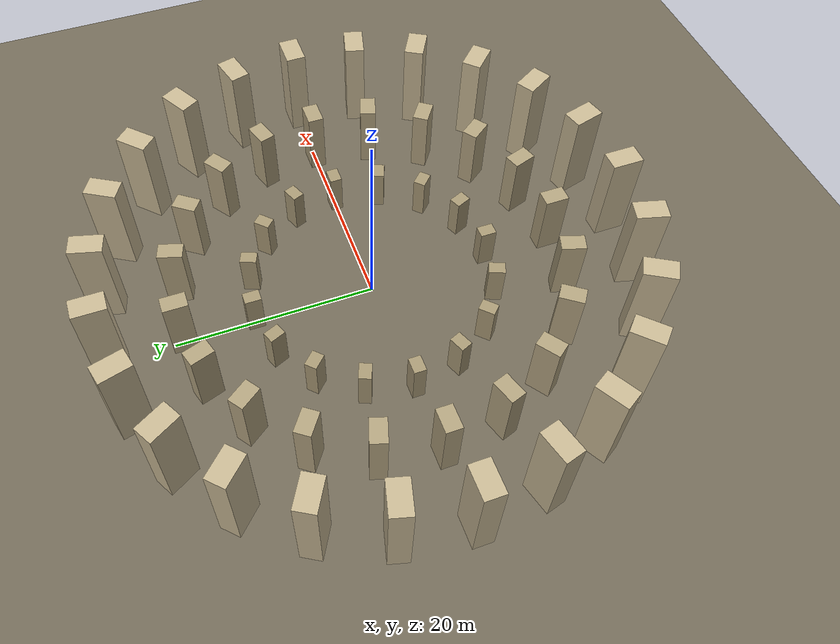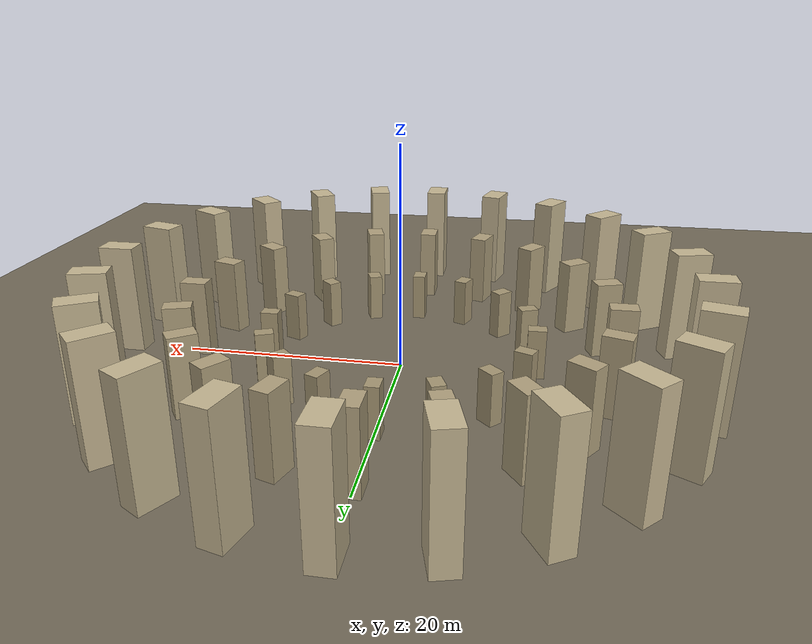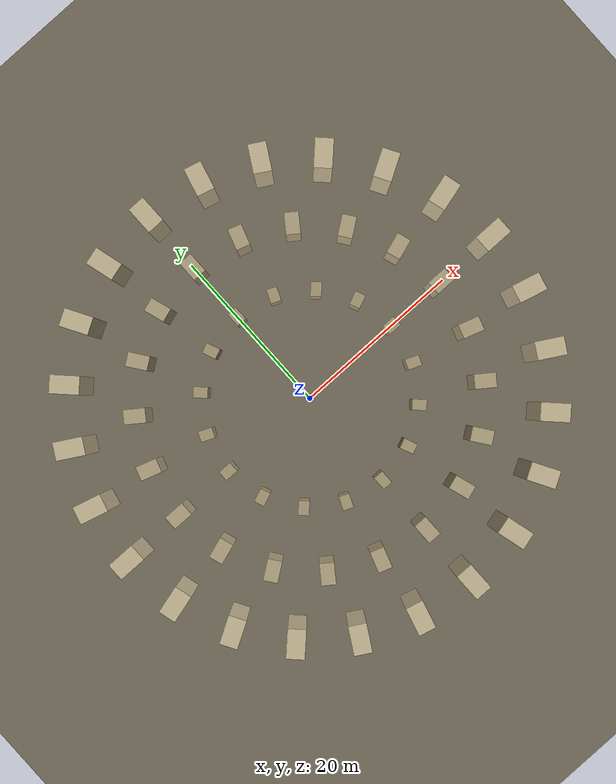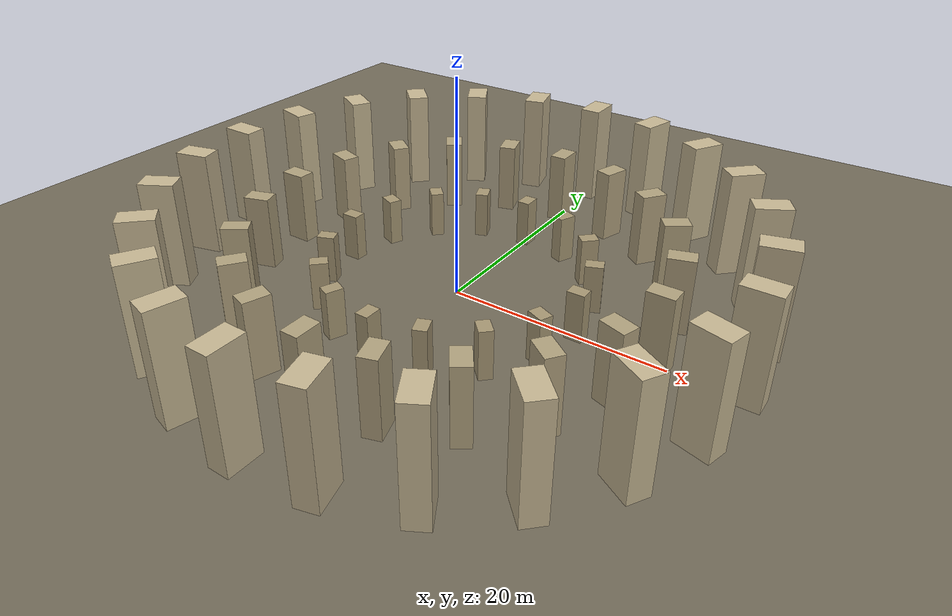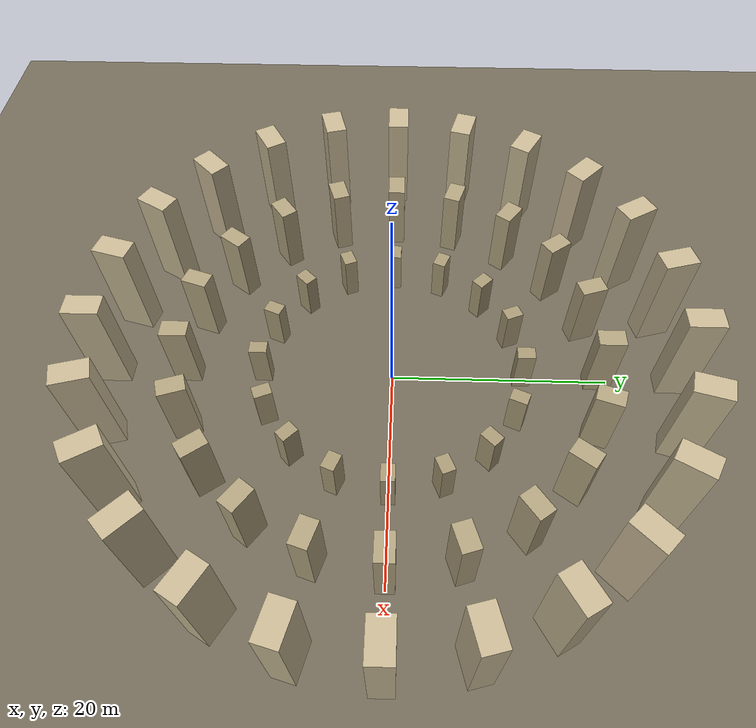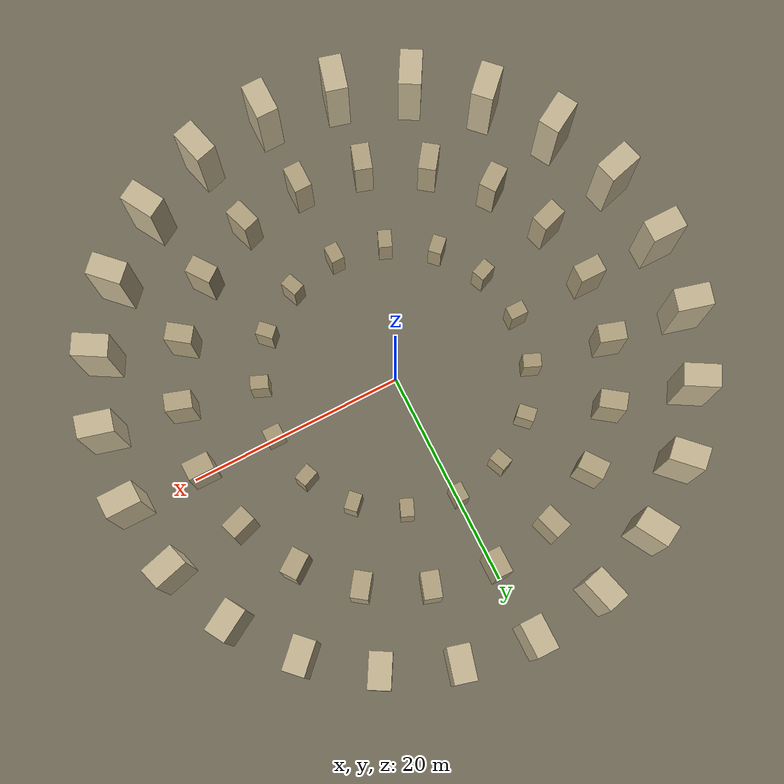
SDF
<sdf version="1.9">
 <world name="uav_colosseum">
  <physics type="ode"><max_step_size>0.004</max_step_size><real_time_factor>1.0</real_time_factor></physics>
  <plugin filename="gz-sim-physics-system" name="gz::sim::systems::Physics"/>
  <plugin filename="gz-sim-user-commands-system" name="gz::sim::systems::UserCommands"/>
  <plugin filename="gz-sim-scene-broadcaster-system" name="gz::sim::systems::SceneBroadcaster"/>
  <plugin filename="gz-sim-sensors-system" name="gz::sim::systems::Sensors">
   <render_engine>ogre2</render_engine>
  </plugin>
  <scene><ambient>0.6 0.6 0.6 1</ambient><background>0.7 0.8 0.95 1</background></scene>
  <light type="directional" name="sun">
   <pose>0 0 100 0 0 0</pose>
   <diffuse>1 1 1 1</diffuse>
   <specular>0.3 0.3 0.3 1</specular>
   <direction>-0.3 0.2 -0.9</direction>
  </light>
  <model name="ground_plane">
   <static>true</static>
   <link name="link">
    <collision name="c"><geometry><plane><normal>0 0 1</normal><size>500 500</size></plane></geometry></collision>
    <visual name="v">
     <geometry><plane><normal>0 0 1</normal><size>500 500</size></plane></geometry>
     <material><diffuse>0.45 0.42 0.35 1</diffuse></material>
    </visual>
   </link>
  </model>
  <model name="outer_0">
   <static>true</static>
   <pose>26.00 0.00 5.00 0 0 0.000</pose>
   <link name="l">
    <collision name="c"><geometry><box><size>3.2 2.0 10</size></box></geometry></collision>
    <visual name="v">
     <geometry><box><size>3.2 2.0 10</size></box></geometry>
     <material><diffuse>0.78 0.72 0.58 1</diffuse><specular>0.2 0.2 0.2 1</specular></material>
    </visual>
   </link>
  </model>
  <model name="outer_1">
   <static>true</static>
   <pose>25.11 6.73 5.00 0 0 0.262</pose>
   <link name="l">
    <collision name="c"><geometry><box><size>3.2 2.0 10</size></box></geometry></collision>
    <visual name="v">
     <geometry><box><size>3.2 2.0 10</size></box></geometry>
     <material><diffuse>0.78 0.72 0.58 1</diffuse><specular>0.2 0.2 0.2 1</specular></material>
    </visual>
   </link>
  </model>
  <model name="outer_2">
   <static>true</static>
   <pose>22.52 13.00 5.00 0 0 0.524</pose>
   <link name="l">
    <collision name="c"><geometry><box><size>3.2 2.0 10</size></box></geometry></collision>
    <visual name="v">
     <geometry><box><size>3.2 2.0 10</size></box></geometry>
     <material><diffuse>0.78 0.72 0.58 1</diffuse><specular>0.2 0.2 0.2 1</specular></material>
    </visual>
   </link>
  </model>
  <model name="outer_3">
   <static>true</static>
   <pose>18.38 18.38 5.00 0 0 0.785</pose>
   <link name="l">
    <collision name="c"><geometry><box><size>3.2 2.0 10</size></box></geometry></collision>
    <visual name="v">
     <geometry><box><size>3.2 2.0 10</size></box></geometry>
     <material><diffuse>0.78 0.72 0.58 1</diffuse><specular>0.2 0.2 0.2 1</specular></material>
    </visual>
   </link>
  </model>
  <model name="outer_4">
   <static>true</static>
   <pose>13.00 22.52 5.00 0 0 1.047</pose>
   <link name="l">
    <collision name="c"><geometry><box><size>3.2 2.0 10</size></box></geometry></collision>
    <visual name="v">
     <geometry><box><size>3.2 2.0 10</size></box></geometry>
     <material><diffuse>0.78 0.72 0.58 1</diffuse><specular>0.2 0.2 0.2 1</specular></material>
    </visual>
   </link>
  </model>
  <model name="outer_5">
   <static>true</static>
   <pose>6.73 25.11 5.00 0 0 1.309</pose>
   <link name="l">
    <collision name="c"><geometry><box><size>3.2 2.0 10</size></box></geometry></collision>
    <visual name="v">
     <geometry><box><size>3.2 2.0 10</size></box></geometry>
     <material><diffuse>0.78 0.72 0.58 1</diffuse><specular>0.2 0.2 0.2 1</specular></material>
    </visual>
   </link>
  </model>
  <model name="outer_6">
   <static>true</static>
   <pose>0.00 26.00 5.00 0 0 1.571</pose>
   <link name="l">
    <collision name="c"><geometry><box><size>3.2 2.0 10</size></box></geometry></collision>
    <visual name="v">
     <geometry><box><size>3.2 2.0 10</size></box></geometry>
     <material><diffuse>0.78 0.72 0.58 1</diffuse><specular>0.2 0.2 0.2 1</specular></material>
    </visual>
   </link>
  </model>
  <model name="outer_7">
   <static>true</static>
   <pose>-6.73 25.11 5.00 0 0 1.833</pose>
   <link name="l">
    <collision name="c"><geometry><box><size>3.2 2.0 10</size></box></geometry></collision>
    <visual name="v">
     <geometry><box><size>3.2 2.0 10</size></box></geometry>
     <material><diffuse>0.78 0.72 0.58 1</diffuse><specular>0.2 0.2 0.2 1</specular></material>
    </visual>
   </link>
  </model>
  <model name="outer_8">
   <static>true</static>
   <pose>-13.00 22.52 5.00 0 0 2.094</pose>
   <link name="l">
    <collision name="c"><geometry><box><size>3.2 2.0 10</size></box></geometry></collision>
    <visual name="v">
     <geometry><box><size>3.2 2.0 10</size></box></geometry>
     <material><diffuse>0.78 0.72 0.58 1</diffuse><specular>0.2 0.2 0.2 1</specular></material>
    </visual>
   </link>
  </model>
  <model name="outer_9">
   <static>true</static>
   <pose>-18.38 18.38 5.00 0 0 2.356</pose>
   <link name="l">
    <collision name="c"><geometry><box><size>3.2 2.0 10</size></box></geometry></collision>
    <visual name="v">
     <geometry><box><size>3.2 2.0 10</size></box></geometry>
     <material><diffuse>0.78 0.72 0.58 1</diffuse><specular>0.2 0.2 0.2 1</specular></material>
    </visual>
   </link>
  </model>
  <model name="outer_10">
   <static>true</static>
   <pose>-22.52 13.00 5.00 0 0 2.618</pose>
   <link name="l">
    <collision name="c"><geometry><box><size>3.2 2.0 10</size></box></geometry></collision>
    <visual name="v">
     <geometry><box><size>3.2 2.0 10</size></box></geometry>
     <material><diffuse>0.78 0.72 0.58 1</diffuse><specular>0.2 0.2 0.2 1</specular></material>
    </visual>
   </link>
  </model>
  <model name="outer_11">
   <static>true</static>
   <pose>-25.11 6.73 5.00 0 0 2.880</pose>
   <link name="l">
    <collision name="c"><geometry><box><size>3.2 2.0 10</size></box></geometry></collision>
    <visual name="v">
     <geometry><box><size>3.2 2.0 10</size></box></geometry>
     <material><diffuse>0.78 0.72 0.58 1</diffuse><specular>0.2 0.2 0.2 1</specular></material>
    </visual>
   </link>
  </model>
  <model name="outer_12">
   <static>true</static>
   <pose>-26.00 0.00 5.00 0 0 3.142</pose>
   <link name="l">
    <collision name="c"><geometry><box><size>3.2 2.0 10</size></box></geometry></collision>
    <visual name="v">
     <geometry><box><size>3.2 2.0 10</size></box></geometry>
     <material><diffuse>0.78 0.72 0.58 1</diffuse><specular>0.2 0.2 0.2 1</specular></material>
    </visual>
   </link>
  </model>
  <model name="outer_13">
   <static>true</static>
   <pose>-25.11 -6.73 5.00 0 0 3.403</pose>
   <link name="l">
    <collision name="c"><geometry><box><size>3.2 2.0 10</size></box></geometry></collision>
    <visual name="v">
     <geometry><box><size>3.2 2.0 10</size></box></geometry>
     <material><diffuse>0.78 0.72 0.58 1</diffuse><specular>0.2 0.2 0.2 1</specular></material>
    </visual>
   </link>
  </model>
  <model name="outer_14">
   <static>true</static>
   <pose>-22.52 -13.00 5.00 0 0 3.665</pose>
   <link name="l">
    <collision name="c"><geometry><box><size>3.2 2.0 10</size></box></geometry></collision>
    <visual name="v">
     <geometry><box><size>3.2 2.0 10</size></box></geometry>
     <material><diffuse>0.78 0.72 0.58 1</diffuse><specular>0.2 0.2 0.2 1</specular></material>
    </visual>
   </link>
  </model>
  <model name="outer_15">
   <static>true</static>
   <pose>-18.38 -18.38 5.00 0 0 3.927</pose>
   <link name="l">
    <collision name="c"><geometry><box><size>3.2 2.0 10</size></box></geometry></collision>
    <visual name="v">
     <geometry><box><size>3.2 2.0 10</size></box></geometry>
     <material><diffuse>0.78 0.72 0.58 1</diffuse><specular>0.2 0.2 0.2 1</specular></material>
    </visual>
   </link>
  </model>
  <model name="outer_16">
   <static>true</static>
   <pose>-13.00 -22.52 5.00 0 0 4.189</pose>
   <link name="l">
    <collision name="c"><geometry><box><size>3.2 2.0 10</size></box></geometry></collision>
    <visual name="v">
     <geometry><box><size>3.2 2.0 10</size></box></geometry>
     <material><diffuse>0.78 0.72 0.58 1</diffuse><specular>0.2 0.2 0.2 1</specular></material>
    </visual>
   </link>
  </model>
  <model name="outer_17">
   <static>true</static>
   <pose>-6.73 -25.11 5.00 0 0 4.451</pose>
   <link name="l">
    <collision name="c"><geometry><box><size>3.2 2.0 10</size></box></geometry></collision>
    <visual name="v">
     <geometry><box><size>3.2 2.0 10</size></box></geometry>
     <material><diffuse>0.78 0.72 0.58 1</diffuse><specular>0.2 0.2 0.2 1</specular></material>
    </visual>
   </link>
  </model>
  <model name="outer_18">
   <static>true</static>
   <pose>-0.00 -26.00 5.00 0 0 4.712</pose>
   <link name="l">
    <collision name="c"><geometry><box><size>3.2 2.0 10</size></box></geometry></collision>
    <visual name="v">
     <geometry><box><size>3.2 2.0 10</size></box></geometry>
     <material><diffuse>0.78 0.72 0.58 1</diffuse><specular>0.2 0.2 0.2 1</specular></material>
    </visual>
   </link>
  </model>
  <model name="outer_19">
   <static>true</static>
   <pose>6.73 -25.11 5.00 0 0 4.974</pose>
   <link name="l">
    <collision name="c"><geometry><box><size>3.2 2.0 10</size></box></geometry></collision>
    <visual name="v">
     <geometry><box><size>3.2 2.0 10</size></box></geometry>
     <material><diffuse>0.78 0.72 0.58 1</diffuse><specular>0.2 0.2 0.2 1</specular></material>
    </visual>
   </link>
  </model>
  <model name="outer_20">
   <static>true</static>
   <pose>13.00 -22.52 5.00 0 0 5.236</pose>
   <link name="l">
    <collision name="c"><geometry><box><size>3.2 2.0 10</size></box></geometry></collision>
    <visual name="v">
     <geometry><box><size>3.2 2.0 10</size></box></geometry>
     <material><diffuse>0.78 0.72 0.58 1</diffuse><specular>0.2 0.2 0.2 1</specular></material>
    </visual>
   </link>
  </model>
  <model name="outer_21">
   <static>true</static>
   <pose>18.38 -18.38 5.00 0 0 5.498</pose>
   <link name="l">
    <collision name="c"><geometry><box><size>3.2 2.0 10</size></box></geometry></collision>
    <visual name="v">
     <geometry><box><size>3.2 2.0 10</size></box></geometry>
     <material><diffuse>0.78 0.72 0.58 1</diffuse><specular>0.2 0.2 0.2 1</specular></material>
    </visual>
   </link>
  </model>
  <model name="outer_22">
   <static>true</static>
   <pose>22.52 -13.00 5.00 0 0 5.760</pose>
   <link name="l">
    <collision name="c"><geometry><box><size>3.2 2.0 10</size></box></geometry></collision>
    <visual name="v">
     <geometry><box><size>3.2 2.0 10</size></box></geometry>
     <material><diffuse>0.78 0.72 0.58 1</diffuse><specular>0.2 0.2 0.2 1</specular></material>
    </visual>
   </link>
  </model>
  <model name="outer_23">
   <static>true</static>
   <pose>25.11 -6.73 5.00 0 0 6.021</pose>
   <link name="l">
    <collision name="c"><geometry><box><size>3.2 2.0 10</size></box></geometry></collision>
    <visual name="v">
     <geometry><box><size>3.2 2.0 10</size></box></geometry>
     <material><diffuse>0.78 0.72 0.58 1</diffuse><specular>0.2 0.2 0.2 1</specular></material>
    </visual>
   </link>
  </model>
  <model name="inner_0">
   <static>true</static>
   <pose>19.00 0.00 3.50 0 0 0.000</pose>
   <link name="l">
    <collision name="c"><geometry><box><size>2.4 1.6 7</size></box></geometry></collision>
    <visual name="v">
     <geometry><box><size>2.4 1.6 7</size></box></geometry>
     <material><diffuse>0.70 0.64 0.50 1</diffuse><specular>0.2 0.2 0.2 1</specular></material>
    </visual>
   </link>
  </model>
  <model name="inner_1">
   <static>true</static>
   <pose>18.07 5.87 3.50 0 0 0.314</pose>
   <link name="l">
    <collision name="c"><geometry><box><size>2.4 1.6 7</size></box></geometry></collision>
    <visual name="v">
     <geometry><box><size>2.4 1.6 7</size></box></geometry>
     <material><diffuse>0.70 0.64 0.50 1</diffuse><specular>0.2 0.2 0.2 1</specular></material>
    </visual>
   </link>
  </model>
  <model name="inner_2">
   <static>true</static>
   <pose>15.37 11.17 3.50 0 0 0.628</pose>
   <link name="l">
    <collision name="c"><geometry><box><size>2.4 1.6 7</size></box></geometry></collision>
    <visual name="v">
     <geometry><box><size>2.4 1.6 7</size></box></geometry>
     <material><diffuse>0.70 0.64 0.50 1</diffuse><specular>0.2 0.2 0.2 1</specular></material>
    </visual>
   </link>
  </model>
  <model name="inner_3">
   <static>true</static>
   <pose>11.17 15.37 3.50 0 0 0.942</pose>
   <link name="l">
    <collision name="c"><geometry><box><size>2.4 1.6 7</size></box></geometry></collision>
    <visual name="v">
     <geometry><box><size>2.4 1.6 7</size></box></geometry>
     <material><diffuse>0.70 0.64 0.50 1</diffuse><specular>0.2 0.2 0.2 1</specular></material>
    </visual>
   </link>
  </model>
  <model name="inner_4">
   <static>true</static>
   <pose>5.87 18.07 3.50 0 0 1.257</pose>
   <link name="l">
    <collision name="c"><geometry><box><size>2.4 1.6 7</size></box></geometry></collision>
    <visual name="v">
     <geometry><box><size>2.4 1.6 7</size></box></geometry>
     <material><diffuse>0.70 0.64 0.50 1</diffuse><specular>0.2 0.2 0.2 1</specular></material>
    </visual>
   </link>
  </model>
  <model name="inner_5">
   <static>true</static>
   <pose>0.00 19.00 3.50 0 0 1.571</pose>
   <link name="l">
    <collision name="c"><geometry><box><size>2.4 1.6 7</size></box></geometry></collision>
    <visual name="v">
     <geometry><box><size>2.4 1.6 7</size></box></geometry>
     <material><diffuse>0.70 0.64 0.50 1</diffuse><specular>0.2 0.2 0.2 1</specular></material>
    </visual>
   </link>
  </model>
  <model name="inner_6">
   <static>true</static>
   <pose>-5.87 18.07 3.50 0 0 1.885</pose>
   <link name="l">
    <collision name="c"><geometry><box><size>2.4 1.6 7</size></box></geometry></collision>
    <visual name="v">
     <geometry><box><size>2.4 1.6 7</size></box></geometry>
     <material><diffuse>0.70 0.64 0.50 1</diffuse><specular>0.2 0.2 0.2 1</specular></material>
    </visual>
   </link>
  </model>
  <model name="inner_7">
   <static>true</static>
   <pose>-11.17 15.37 3.50 0 0 2.199</pose>
   <link name="l">
    <collision name="c"><geometry><box><size>2.4 1.6 7</size></box></geometry></collision>
    <visual name="v">
     <geometry><box><size>2.4 1.6 7</size></box></geometry>
     <material><diffuse>0.70 0.64 0.50 1</diffuse><specular>0.2 0.2 0.2 1</specular></material>
    </visual>
   </link>
  </model>
  <model name="inner_8">
   <static>true</static>
   <pose>-15.37 11.17 3.50 0 0 2.513</pose>
   <link name="l">
    <collision name="c"><geometry><box><size>2.4 1.6 7</size></box></geometry></collision>
    <visual name="v">
     <geometry><box><size>2.4 1.6 7</size></box></geometry>
     <material><diffuse>0.70 0.64 0.50 1</diffuse><specular>0.2 0.2 0.2 1</specular></material>
    </visual>
   </link>
  </model>
  <model name="inner_9">
   <static>true</static>
   <pose>-18.07 5.87 3.50 0 0 2.827</pose>
   <link name="l">
    <collision name="c"><geometry><box><size>2.4 1.6 7</size></box></geometry></collision>
    <visual name="v">
     <geometry><box><size>2.4 1.6 7</size></box></geometry>
     <material><diffuse>0.70 0.64 0.50 1</diffuse><specular>0.2 0.2 0.2 1</specular></material>
    </visual>
   </link>
  </model>
  <model name="inner_10">
   <static>true</static>
   <pose>-19.00 0.00 3.50 0 0 3.142</pose>
   <link name="l">
    <collision name="c"><geometry><box><size>2.4 1.6 7</size></box></geometry></collision>
    <visual name="v">
     <geometry><box><size>2.4 1.6 7</size></box></geometry>
     <material><diffuse>0.70 0.64 0.50 1</diffuse><specular>0.2 0.2 0.2 1</specular></material>
    </visual>
   </link>
  </model>
  <model name="inner_11">
   <static>true</static>
   <pose>-18.07 -5.87 3.50 0 0 3.456</pose>
   <link name="l">
    <collision name="c"><geometry><box><size>2.4 1.6 7</size></box></geometry></collision>
    <visual name="v">
     <geometry><box><size>2.4 1.6 7</size></box></geometry>
     <material><diffuse>0.70 0.64 0.50 1</diffuse><specular>0.2 0.2 0.2 1</specular></material>
    </visual>
   </link>
  </model>
  <model name="inner_12">
   <static>true</static>
   <pose>-15.37 -11.17 3.50 0 0 3.770</pose>
   <link name="l">
    <collision name="c"><geometry><box><size>2.4 1.6 7</size></box></geometry></collision>
    <visual name="v">
     <geometry><box><size>2.4 1.6 7</size></box></geometry>
     <material><diffuse>0.70 0.64 0.50 1</diffuse><specular>0.2 0.2 0.2 1</specular></material>
    </visual>
   </link>
  </model>
  <model name="inner_13">
   <static>true</static>
   <pose>-11.17 -15.37 3.50 0 0 4.084</pose>
   <link name="l">
    <collision name="c"><geometry><box><size>2.4 1.6 7</size></box></geometry></collision>
    <visual name="v">
     <geometry><box><size>2.4 1.6 7</size></box></geometry>
     <material><diffuse>0.70 0.64 0.50 1</diffuse><specular>0.2 0.2 0.2 1</specular></material>
    </visual>
   </link>
  </model>
  <model name="inner_14">
   <static>true</static>
   <pose>-5.87 -18.07 3.50 0 0 4.398</pose>
   <link name="l">
    <collision name="c"><geometry><box><size>2.4 1.6 7</size></box></geometry></collision>
    <visual name="v">
     <geometry><box><size>2.4 1.6 7</size></box></geometry>
     <material><diffuse>0.70 0.64 0.50 1</diffuse><specular>0.2 0.2 0.2 1</specular></material>
    </visual>
   </link>
  </model>
  <model name="inner_15">
   <static>true</static>
   <pose>-0.00 -19.00 3.50 0 0 4.712</pose>
   <link name="l">
    <collision name="c"><geometry><box><size>2.4 1.6 7</size></box></geometry></collision>
    <visual name="v">
     <geometry><box><size>2.4 1.6 7</size></box></geometry>
     <material><diffuse>0.70 0.64 0.50 1</diffuse><specular>0.2 0.2 0.2 1</specular></material>
    </visual>
   </link>
  </model>
  <model name="inner_16">
   <static>true</static>
   <pose>5.87 -18.07 3.50 0 0 5.027</pose>
   <link name="l">
    <collision name="c"><geometry><box><size>2.4 1.6 7</size></box></geometry></collision>
    <visual name="v">
     <geometry><box><size>2.4 1.6 7</size></box></geometry>
     <material><diffuse>0.70 0.64 0.50 1</diffuse><specular>0.2 0.2 0.2 1</specular></material>
    </visual>
   </link>
  </model>
  <model name="inner_17">
   <static>true</static>
   <pose>11.17 -15.37 3.50 0 0 5.341</pose>
   <link name="l">
    <collision name="c"><geometry><box><size>2.4 1.6 7</size></box></geometry></collision>
    <visual name="v">
     <geometry><box><size>2.4 1.6 7</size></box></geometry>
     <material><diffuse>0.70 0.64 0.50 1</diffuse><specular>0.2 0.2 0.2 1</specular></material>
    </visual>
   </link>
  </model>
  <model name="inner_18">
   <static>true</static>
   <pose>15.37 -11.17 3.50 0 0 5.655</pose>
   <link name="l">
    <collision name="c"><geometry><box><size>2.4 1.6 7</size></box></geometry></collision>
    <visual name="v">
     <geometry><box><size>2.4 1.6 7</size></box></geometry>
     <material><diffuse>0.70 0.64 0.50 1</diffuse><specular>0.2 0.2 0.2 1</specular></material>
    </visual>
   </link>
  </model>
  <model name="inner_19">
   <static>true</static>
   <pose>18.07 -5.87 3.50 0 0 5.969</pose>
   <link name="l">
    <collision name="c"><geometry><box><size>2.4 1.6 7</size></box></geometry></collision>
    <visual name="v">
     <geometry><box><size>2.4 1.6 7</size></box></geometry>
     <material><diffuse>0.70 0.64 0.50 1</diffuse><specular>0.2 0.2 0.2 1</specular></material>
    </visual>
   </link>
  </model>
  <model name="arena_0">
   <static>true</static>
   <pose>12.00 0.00 2.25 0 0 0.000</pose>
   <link name="l">
    <collision name="c"><geometry><box><size>1.6 1.2 4.5</size></box></geometry></collision>
    <visual name="v">
     <geometry><box><size>1.6 1.2 4.5</size></box></geometry>
     <material><diffuse>0.66 0.60 0.46 1</diffuse><specular>0.2 0.2 0.2 1</specular></material>
    </visual>
   </link>
  </model>
  <model name="arena_1">
   <static>true</static>
   <pose>11.09 4.59 2.25 0 0 0.393</pose>
   <link name="l">
    <collision name="c"><geometry><box><size>1.6 1.2 4.5</size></box></geometry></collision>
    <visual name="v">
     <geometry><box><size>1.6 1.2 4.5</size></box></geometry>
     <material><diffuse>0.66 0.60 0.46 1</diffuse><specular>0.2 0.2 0.2 1</specular></material>
    </visual>
   </link>
  </model>
  <model name="arena_2">
   <static>true</static>
   <pose>8.49 8.49 2.25 0 0 0.785</pose>
   <link name="l">
    <collision name="c"><geometry><box><size>1.6 1.2 4.5</size></box></geometry></collision>
    <visual name="v">
     <geometry><box><size>1.6 1.2 4.5</size></box></geometry>
     <material><diffuse>0.66 0.60 0.46 1</diffuse><specular>0.2 0.2 0.2 1</specular></material>
    </visual>
   </link>
  </model>
  <model name="arena_3">
   <static>true</static>
   <pose>4.59 11.09 2.25 0 0 1.178</pose>
   <link name="l">
    <collision name="c"><geometry><box><size>1.6 1.2 4.5</size></box></geometry></collision>
    <visual name="v">
     <geometry><box><size>1.6 1.2 4.5</size></box></geometry>
     <material><diffuse>0.66 0.60 0.46 1</diffuse><specular>0.2 0.2 0.2 1</specular></material>
    </visual>
   </link>
  </model>
  <model name="arena_4">
   <static>true</static>
   <pose>0.00 12.00 2.25 0 0 1.571</pose>
   <link name="l">
    <collision name="c"><geometry><box><size>1.6 1.2 4.5</size></box></geometry></collision>
    <visual name="v">
     <geometry><box><size>1.6 1.2 4.5</size></box></geometry>
     <material><diffuse>0.66 0.60 0.46 1</diffuse><specular>0.2 0.2 0.2 1</specular></material>
    </visual>
   </link>
  </model>
  <model name="arena_5">
   <static>true</static>
   <pose>-4.59 11.09 2.25 0 0 1.963</pose>
   <link name="l">
    <collision name="c"><geometry><box><size>1.6 1.2 4.5</size></box></geometry></collision>
    <visual name="v">
     <geometry><box><size>1.6 1.2 4.5</size></box></geometry>
     <material><diffuse>0.66 0.60 0.46 1</diffuse><specular>0.2 0.2 0.2 1</specular></material>
    </visual>
   </link>
  </model>
  <model name="arena_6">
   <static>true</static>
   <pose>-8.49 8.49 2.25 0 0 2.356</pose>
   <link name="l">
    <collision name="c"><geometry><box><size>1.6 1.2 4.5</size></box></geometry></collision>
    <visual name="v">
     <geometry><box><size>1.6 1.2 4.5</size></box></geometry>
     <material><diffuse>0.66 0.60 0.46 1</diffuse><specular>0.2 0.2 0.2 1</specular></material>
    </visual>
   </link>
  </model>
  <model name="arena_7">
   <static>true</static>
   <pose>-11.09 4.59 2.25 0 0 2.749</pose>
   <link name="l">
    <collision name="c"><geometry><box><size>1.6 1.2 4.5</size></box></geometry></collision>
    <visual name="v">
     <geometry><box><size>1.6 1.2 4.5</size></box></geometry>
     <material><diffuse>0.66 0.60 0.46 1</diffuse><specular>0.2 0.2 0.2 1</specular></material>
    </visual>
   </link>
  </model>
  <model name="arena_8">
   <static>true</static>
   <pose>-12.00 0.00 2.25 0 0 3.142</pose>
   <link name="l">
    <collision name="c"><geometry><box><size>1.6 1.2 4.5</size></box></geometry></collision>
    <visual name="v">
     <geometry><box><size>1.6 1.2 4.5</size></box></geometry>
     <material><diffuse>0.66 0.60 0.46 1</diffuse><specular>0.2 0.2 0.2 1</specular></material>
    </visual>
   </link>
  </model>
  <model name="arena_9">
   <static>true</static>
   <pose>-11.09 -4.59 2.25 0 0 3.534</pose>
   <link name="l">
    <collision name="c"><geometry><box><size>1.6 1.2 4.5</size></box></geometry></collision>
    <visual name="v">
     <geometry><box><size>1.6 1.2 4.5</size></box></geometry>
     <material><diffuse>0.66 0.60 0.46 1</diffuse><specular>0.2 0.2 0.2 1</specular></material>
    </visual>
   </link>
  </model>
  <model name="arena_10">
   <static>true</static>
   <pose>-8.49 -8.49 2.25 0 0 3.927</pose>
   <link name="l">
    <collision name="c"><geometry><box><size>1.6 1.2 4.5</size></box></geometry></collision>
    <visual name="v">
     <geometry><box><size>1.6 1.2 4.5</size></box></geometry>
     <material><diffuse>0.66 0.60 0.46 1</diffuse><specular>0.2 0.2 0.2 1</specular></material>
    </visual>
   </link>
  </model>
  <model name="arena_11">
   <static>true</static>
   <pose>-4.59 -11.09 2.25 0 0 4.320</pose>
   <link name="l">
    <collision name="c"><geometry><box><size>1.6 1.2 4.5</size></box></geometry></collision>
    <visual name="v">
     <geometry><box><size>1.6 1.2 4.5</size></box></geometry>
     <material><diffuse>0.66 0.60 0.46 1</diffuse><specular>0.2 0.2 0.2 1</specular></material>
    </visual>
   </link>
  </model>
  <model name="arena_12">
   <static>true</static>
   <pose>-0.00 -12.00 2.25 0 0 4.712</pose>
   <link name="l">
    <collision name="c"><geometry><box><size>1.6 1.2 4.5</size></box></geometry></collision>
    <visual name="v">
     <geometry><box><size>1.6 1.2 4.5</size></box></geometry>
     <material><diffuse>0.66 0.60 0.46 1</diffuse><specular>0.2 0.2 0.2 1</specular></material>
    </visual>
   </link>
  </model>
  <model name="arena_13">
   <static>true</static>
   <pose>4.59 -11.09 2.25 0 0 5.105</pose>
   <link name="l">
    <collision name="c"><geometry><box><size>1.6 1.2 4.5</size></box></geometry></collision>
    <visual name="v">
     <geometry><box><size>1.6 1.2 4.5</size></box></geometry>
     <material><diffuse>0.66 0.60 0.46 1</diffuse><specular>0.2 0.2 0.2 1</specular></material>
    </visual>
   </link>
  </model>
  <model name="arena_14">
   <static>true</static>
   <pose>8.49 -8.49 2.25 0 0 5.498</pose>
   <link name="l">
    <collision name="c"><geometry><box><size>1.6 1.2 4.5</size></box></geometry></collision>
    <visual name="v">
     <geometry><box><size>1.6 1.2 4.5</size></box></geometry>
     <material><diffuse>0.66 0.60 0.46 1</diffuse><specular>0.2 0.2 0.2 1</specular></material>
    </visual>
   </link>
  </model>
  <model name="arena_15">
   <static>true</static>
   <pose>11.09 -4.59 2.25 0 0 5.890</pose>
   <link name="l">
    <collision name="c"><geometry><box><size>1.6 1.2 4.5</size></box></geometry></collision>
    <visual name="v">
     <geometry><box><size>1.6 1.2 4.5</size></box></geometry>
     <material><diffuse>0.66 0.60 0.46 1</diffuse><specular>0.2 0.2 0.2 1</specular></material>
    </visual>
   </link>
  </model>
  <model name="spectator">
   <static>true</static>
   <pose>34 0 16 0 -0.18 3.14159</pose>
   <link name="l">
    <sensor name="spec" type="camera">
     <topic>spectator</topic>
     <camera>
      <horizontal_fov>1.5</horizontal_fov>
      <image><width>1280</width><height>720</height></image>
      <clip><near>0.1</near><far>800</far></clip>
     </camera>
     <always_on>1</always_on>
     <update_rate>20</update_rate>
    </sensor>
   </link>
  </model>
 </world>
</sdf>
